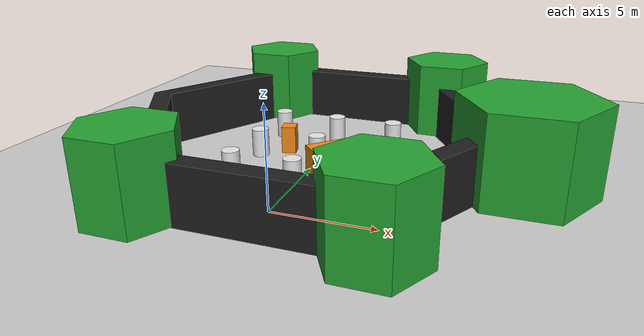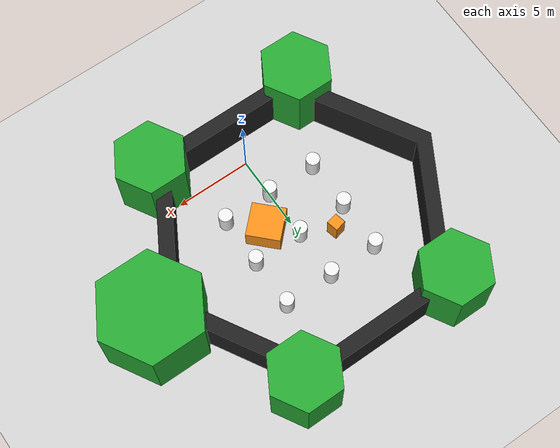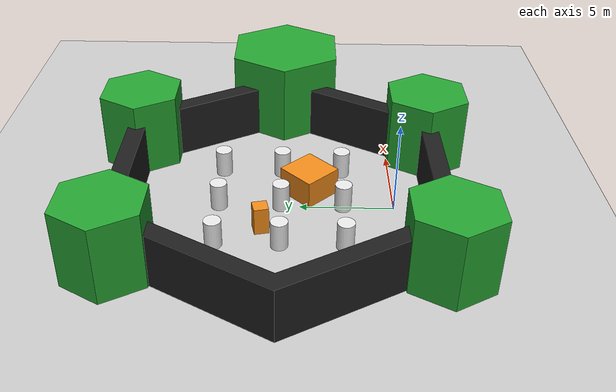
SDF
<?xml version="1.0"?>
<sdf version="1.6">
  <world name="default">
    <physics name="1ms" type="ignored">
      <max_step_size>0.001</max_step_size>
      <real_time_factor>1.0</real_time_factor>
    </physics>
    <plugin
      filename="gz-sim-physics-system"
      name="gz::sim::systems::Physics">
    </plugin>
    <plugin
      filename="gz-sim-user-commands-system"
      name="gz::sim::systems::UserCommands">
    </plugin>
    <plugin
      filename="gz-sim-scene-broadcaster-system"
      name="gz::sim::systems::SceneBroadcaster">
    </plugin>
    <plugin
      filename="gz-sim-sensors-system"
      name="gz::sim::systems::Sensors">
      <render_engine>ogre2</render_engine>
    </plugin>
    <plugin
      filename="gz-sim-imu-system"
      name="gz::sim::systems::Imu">
    </plugin>

    <light type="directional" name="sun">
      <cast_shadows>true</cast_shadows>
      <pose>0 0 10 0 0 0</pose>
      <diffuse>0.8 0.8 0.8 1</diffuse>
      <specular>0.2 0.2 0.2 1</specular>
      <attenuation>
        <range>1000</range>
        <constant>0.9</constant>
        <linear>0.01</linear>
        <quadratic>0.001</quadratic>
      </attenuation>
      <direction>-0.5 0.1 -0.9</direction>
    </light>

    <model name="ground_plane">
      <static>true</static>
      <link name="link">
        <collision name="collision">
          <geometry>
            <plane>
              <normal>0 0 1</normal>
              <size>100 100</size>
            </plane>
          </geometry>
        </collision>
        <visual name="visual">
          <geometry>
            <plane>
              <normal>0 0 1</normal>
              <size>100 100</size>
            </plane>
          </geometry>
          <material>
            <ambient>0.8 0.8 0.8 1</ambient>
            <diffuse>0.8 0.8 0.8 1</diffuse>
            <specular>0.8 0.8 0.8 1</specular>
          </material>
        </visual>
      </link>
    </model>

    <include>
      <uri>models/turtlebot3_world</uri>
      <name>turtlebot3_world</name>
      <pose>0 6 0 0 0 0</pose>
    </include>

    <model name='unit_box_1'>
      <static>true</static>
      <pose>1.5 4.5 0.75 0 0 0.777</pose>
      <link name='link'>
        <inertial>
          <mass>1</mass>
          <inertia>
            <ixx>0.166667</ixx>
            <ixy>0</ixy>
            <ixz>0</ixz>
            <iyy>0.166667</iyy>
            <iyz>0</iyz>
            <izz>0.166667</izz>
          </inertia>
          <pose>0 0 0 0 -0 0</pose>
        </inertial>
        <collision name='collision'>
          <geometry>
            <box>
              <size>2.2 2.2 1.5</size>
            </box>
          </geometry>
        </collision>
        <visual name='visual'>
          <geometry>
            <box>
              <size>2.2 2.2 1.5</size>
            </box>
          </geometry>
          <material>
            <script>
              <name>Gazebo/Orange</name>
              <uri>file://media/materials/scripts/gazebo.material</uri>
            </script>
          </material>
        </visual>
      </link>
    </model>

    <model name='unit_box_2'>
      <static>true</static>
      <pose>-2 7 0.75 0 0 0.222</pose>
      <link name='link'>
        <inertial>
          <mass>1</mass>
          <inertia>
            <ixx>0.166667</ixx>
            <ixy>0</ixy>
            <ixz>0</ixz>
            <iyy>0.166667</iyy>
            <iyz>0</iyz>
            <izz>0.166667</izz>
          </inertia>
          <pose>0 0 0 0 -0 0</pose>
        </inertial>
        <collision name='collision'>
          <geometry>
            <box>
              <size>0.77 0.77 1.5</size>
            </box>
          </geometry>
        </collision>
        <visual name='visual'>
          <geometry>
            <box>
              <size>0.77 0.77 1.5</size>
            </box>
          </geometry>
          <material>
            <script>
              <name>Gazebo/Orange</name>
              <uri>file://media/materials/scripts/gazebo.material</uri>
            </script>
          </material>
        </visual>
      </link>
    </model>

  </world>
</sdf>

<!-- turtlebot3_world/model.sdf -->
<sdf version='1.5'>
    <!-- Draw Circle -->
    <model name='ros_symbol'>
      <static>1</static>
      <link name='symbol'>
        <collision name='one_one'>
          <pose>-3.3 -3.3 0.75 0 0 0</pose>
          <geometry>
            <cylinder>
              <radius>0.45</radius>
              <length>1.5</length>
            </cylinder>
          </geometry>
          <max_contacts>10</max_contacts>
          <surface>
            <bounce/>
            <friction>
              <ode/>
            </friction>
            <contact>
              <ode/>
            </contact>
          </surface>
        </collision>

        <visual name='one_one'>
          <pose>-3.3 -3.3 0.75 0 0 0</pose>
          <geometry>
            <cylinder>
              <radius>0.45</radius>
              <length>1.5</length>
            </cylinder>
          </geometry>
          <material>
            <script>
              <uri>file://media/materials/scripts/gazebo.material</uri>
              <name>Gazebo/White</name>
            </script>
          </material>
        </visual>

        <collision name='one_two'>
          <pose>-3.3 0 0.75 0 0 0</pose>
          <geometry>
            <cylinder>
              <radius>0.45</radius>
              <length>1.5</length>
            </cylinder>
          </geometry>
          <max_contacts>10</max_contacts>
          <surface>
            <bounce/>
            <friction>
              <ode/>
            </friction>
            <contact>
              <ode/>
            </contact>
          </surface>
        </collision>

        <visual name='one_two'>
          <pose>-3.3 0 0.75 0 0 0</pose>
          <geometry>
            <cylinder>
              <radius>0.45</radius>
              <length>1.5</length>
            </cylinder>
          </geometry>
          <material>
            <script>
              <uri>file://media/materials/scripts/gazebo.material</uri>
              <name>Gazebo/White</name>
            </script>
          </material>
        </visual>

        <collision name='one_three'>
          <pose>-3.3 3.3 0.75 0 0 0</pose>
          <geometry>
            <cylinder>
              <radius>0.45</radius>
              <length>1.5</length>
            </cylinder>
          </geometry>
          <max_contacts>10</max_contacts>
          <surface>
            <bounce/>
            <friction>
              <ode/>
            </friction>
            <contact>
              <ode/>
            </contact>
          </surface>
        </collision>

        <visual name='one_three'>
          <pose>-3.3 3.3 0.75 0 0 0</pose>
          <geometry>
            <cylinder>
              <radius>0.45</radius>
              <length>1.5</length>
            </cylinder>
          </geometry>
          <material>
            <script>
              <uri>file://media/materials/scripts/gazebo.material</uri>
              <name>Gazebo/White</name>
            </script>
          </material>
        </visual>

        <collision name='two_one'>
          <pose>0 -3.3 0.75 0 0 0</pose>
          <geometry>
            <cylinder>
              <radius>0.45</radius>
              <length>1.5</length>
            </cylinder>
          </geometry>
          <max_contacts>10</max_contacts>
          <surface>
            <bounce/>
            <friction>
              <ode/>
            </friction>
            <contact>
              <ode/>
            </contact>
          </surface>
        </collision>

        <visual name='two_one'>
          <pose>0 -3.3 0.75 0 0 0</pose>
          <geometry>
            <cylinder>
              <radius>0.45</radius>
              <length>1.5</length>
            </cylinder>
          </geometry>
          <material>
            <script>
              <uri>file://media/materials/scripts/gazebo.material</uri>
              <name>Gazebo/White</name>
            </script>
          </material>
        </visual>

        <collision name='two_two'>
          <pose>0 0 0.75 0 0 0</pose>
          <geometry>
            <cylinder>
              <radius>0.45</radius>
              <length>1.5</length>
            </cylinder>
          </geometry>
          <max_contacts>10</max_contacts>
          <surface>
            <bounce/>
            <friction>
              <ode/>
            </friction>
            <contact>
              <ode/>
            </contact>
          </surface>
        </collision>

        <visual name='two_two'>
          <pose>0 0 0.75 0 0 0</pose>
          <geometry>
            <cylinder>
              <radius>0.45</radius>
              <length>1.5</length>
            </cylinder>
          </geometry>
          <material>
            <script>
              <uri>file://media/materials/scripts/gazebo.material</uri>
              <name>Gazebo/White</name>
            </script>
          </material>
        </visual>

        <collision name='two_three'>
          <pose>0 3.3 0.75 0 0 0</pose>
          <geometry>
            <cylinder>
              <radius>0.45</radius>
              <length>1.5</length>
            </cylinder>
          </geometry>
          <max_contacts>10</max_contacts>
          <surface>
            <bounce/>
            <friction>
              <ode/>
            </friction>
            <contact>
              <ode/>
            </contact>
          </surface>
        </collision>

        <visual name='two_three'>
          <pose>0 3.3 0.75 0 0 0</pose>
          <geometry>
            <cylinder>
              <radius>0.45</radius>
              <length>1.5</length>
            </cylinder>
          </geometry>
          <material>
            <script>
              <uri>file://media/materials/scripts/gazebo.material</uri>
              <name>Gazebo/White</name>
            </script>
          </material>
        </visual>

        <collision name='three_one'>
          <pose>3.3 -3.3 0.75 0 0 0</pose>
          <geometry>
            <cylinder>
              <radius>0.45</radius>
              <length>1.5</length>
            </cylinder>
          </geometry>
          <max_contacts>10</max_contacts>
          <surface>
            <bounce/>
            <friction>
              <ode/>
            </friction>
            <contact>
              <ode/>
            </contact>
          </surface>
        </collision>

        <visual name='three_one'>
          <pose>3.3 -3.3 0.75 0 0 0</pose>
          <geometry>
            <cylinder>
              <radius>0.45</radius>
              <length>1.5</length>
            </cylinder>
          </geometry>
          <material>
            <script>
              <uri>file://media/materials/scripts/gazebo.material</uri>
              <name>Gazebo/White</name>
            </script>
          </material>
        </visual>

        <collision name='three_two'>
          <pose>3.3 0 0.75 0 0 0</pose>
          <geometry>
            <cylinder>
              <radius>0.45</radius>
              <length>1.5</length>
            </cylinder>
          </geometry>
          <max_contacts>10</max_contacts>
          <surface>
            <bounce/>
            <friction>
              <ode/>
            </friction>
            <contact>
              <ode/>
            </contact>
          </surface>
        </collision>

        <visual name='three_two'>
          <pose>3.3 0 0.75 0 0 0</pose>
          <geometry>
            <cylinder>
              <radius>0.45</radius>
              <length>1.5</length>
            </cylinder>
          </geometry>
          <material>
            <script>
              <uri>file://media/materials/scripts/gazebo.material</uri>
              <name>Gazebo/White</name>
            </script>
          </material>
        </visual>

        <collision name='three_three'>
          <pose>3.3 3.3 0.75 0 0 0</pose>
          <geometry>
            <cylinder>
              <radius>0.45</radius>
              <length>1.5</length>
            </cylinder>
          </geometry>
          <max_contacts>10</max_contacts>
          <surface>
            <bounce/>
            <friction>
              <ode/>
            </friction>
            <contact>
              <ode/>
            </contact>
          </surface>
        </collision>

        <visual name='three_three'>
          <pose>3.3 3.3 0.75 0 0 0</pose>
          <geometry>
            <cylinder>
              <radius>0.45</radius>
              <length>1.5</length>
            </cylinder>
          </geometry>
          <material>
            <script>
              <uri>file://media/materials/scripts/gazebo.material</uri>
              <name>Gazebo/White</name>
            </script>
          </material>
        </visual>

        <!-- Draw Hexagon -->
        <collision name='head'>
          <pose>10.5 0 -1.5 0 0 0</pose>
          <geometry>
            <mesh>
              <uri>meshes/hexagon.dae</uri>
              <scale>2.4 2.4 2.4</scale>
            </mesh>
          </geometry>
          <max_contacts>10</max_contacts>
          <surface>
            <bounce/>
            <friction>
              <ode/>
            </friction>
            <contact>
              <ode/>
            </contact>
          </surface>
        </collision>

        <visual name='head'>
          <pose>10.5 0 -1.5 0 0 0</pose>
          <geometry>
            <mesh>
              <uri>meshes/hexagon.dae</uri>
              <scale>2.4 2.4 2.4</scale>
            </mesh>
          </geometry>
          <material>
            <script>
              <uri>file://media/materials/scripts/gazebo.material</uri>
              <name>Gazebo/Green</name>
            </script>
          </material>
        </visual>

        <collision name='left_hand'>
          <pose>5.4 8.1 0 0 0 0</pose>
          <geometry>
            <mesh>
              <uri>meshes/hexagon.dae</uri>
              <scale>1.65 1.65 1.65</scale>
            </mesh>
          </geometry>
          <max_contacts>10</max_contacts>
          <surface>
            <bounce/>
            <friction>
              <ode/>
            </friction>
            <contact>
              <ode/>
            </contact>
          </surface>
        </collision>

        <visual name='left_hand'>
          <pose>5.4 8.1 0 0 0 0</pose>
          <geometry>
            <mesh>
              <uri>meshes/hexagon.dae</uri>
              <scale>1.65 1.65 1.65</scale>
            </mesh>
          </geometry>
          <material>
            <script>
              <uri>file://media/materials/scripts/gazebo.material</uri>
              <name>Gazebo/Green</name>
            </script>
          </material>
        </visual>

        <collision name='right_hand'>
          <pose>5.4 -8.1 0 0 0 0</pose>
          <geometry>
            <mesh>
              <uri>meshes/hexagon.dae</uri>
              <scale>1.65 1.65 1.65</scale>
            </mesh>
          </geometry>
          <max_contacts>10</max_contacts>
          <surface>
            <bounce/>
            <friction>
              <ode/>
            </friction>
            <contact>
              <ode/>
            </contact>
          </surface>
        </collision>

        <visual name='right_hand'>
          <pose>5.4 -8.1 0 0 0 0</pose>
          <geometry>
            <mesh>
              <uri>meshes/hexagon.dae</uri>
              <scale>1.65 1.65 1.65</scale>
            </mesh>
          </geometry>
          <material>
            <script>
              <uri>file://media/materials/scripts/gazebo.material</uri>
              <name>Gazebo/Green</name>
            </script>
          </material>
        </visual>

        <collision name='left_foot'>
          <pose>-5.4 8.1 0 0 0 0</pose>
          <geometry>
            <mesh>
              <uri>meshes/hexagon.dae</uri>
              <scale>1.65 1.65 1.65</scale>
            </mesh>
          </geometry>
          <max_contacts>10</max_contacts>
          <surface>
            <bounce/>
            <friction>
              <ode/>
            </friction>
            <contact>
              <ode/>
            </contact>
          </surface>
        </collision>

        <visual name='left_foot'>
          <pose>-5.4 8.1 0 0 0 0</pose>
          <geometry>
            <mesh>
              <uri>meshes/hexagon.dae</uri>
              <scale>1.65 1.65 1.65</scale>
            </mesh>
          </geometry>
          <material>
            <script>
              <uri>file://media/materials/scripts/gazebo.material</uri>
              <name>Gazebo/Green</name>
            </script>
          </material>
        </visual>

        <collision name='right_foot'>
          <pose>-5.4 -8.1 0 0 0 0</pose>
          <geometry>
            <mesh>
              <uri>meshes/hexagon.dae</uri>
              <scale>1.65 1.65 1.65</scale>
            </mesh>
          </geometry>
          <max_contacts>10</max_contacts>
          <surface>
            <bounce/>
            <friction>
              <ode/>
            </friction>
            <contact>
              <ode/>
            </contact>
          </surface>
        </collision>

        <visual name='right_foot'>
          <pose>-5.4 -8.1 0 0 0 0</pose>
          <geometry>
            <mesh>
              <uri>meshes/hexagon.dae</uri>
              <scale>1.65 1.65 1.65</scale>
            </mesh>
          </geometry>
          <material>
            <script>
              <uri>file://media/materials/scripts/gazebo.material</uri>
              <name>Gazebo/Green</name>
            </script>
          </material>
        </visual>

        <!-- Draw Wall -->
        <collision name='body'>
        <pose>0 0 -0.9 0 0 -1.5708</pose>
        <geometry>
          <mesh>
            <uri>meshes/wall.dae</uri>
            <scale>0.75 0.75 0.75</scale>
          </mesh>
        </geometry>
        <max_contacts>10</max_contacts>
        <surface>
          <bounce/>
          <friction>
            <ode/>
          </friction>
          <contact>
            <ode/>
          </contact>
        </surface>
      </collision>

      <visual name='body'>
        <pose>0 0 -0.9 0 0 -1.5708</pose>
        <geometry>
          <mesh>
            <uri>meshes/wall.dae</uri>
            <scale>0.75 0.75 0.75</scale>
          </mesh>
        </geometry>
        <material>
          <script>
            <uri>file://media/materials/scripts/gazebo.material</uri>
            <name>Gazebo/FlatBlack</name>
          </script>
        </material>
      </visual>
    </link>
  </model>
</sdf>
